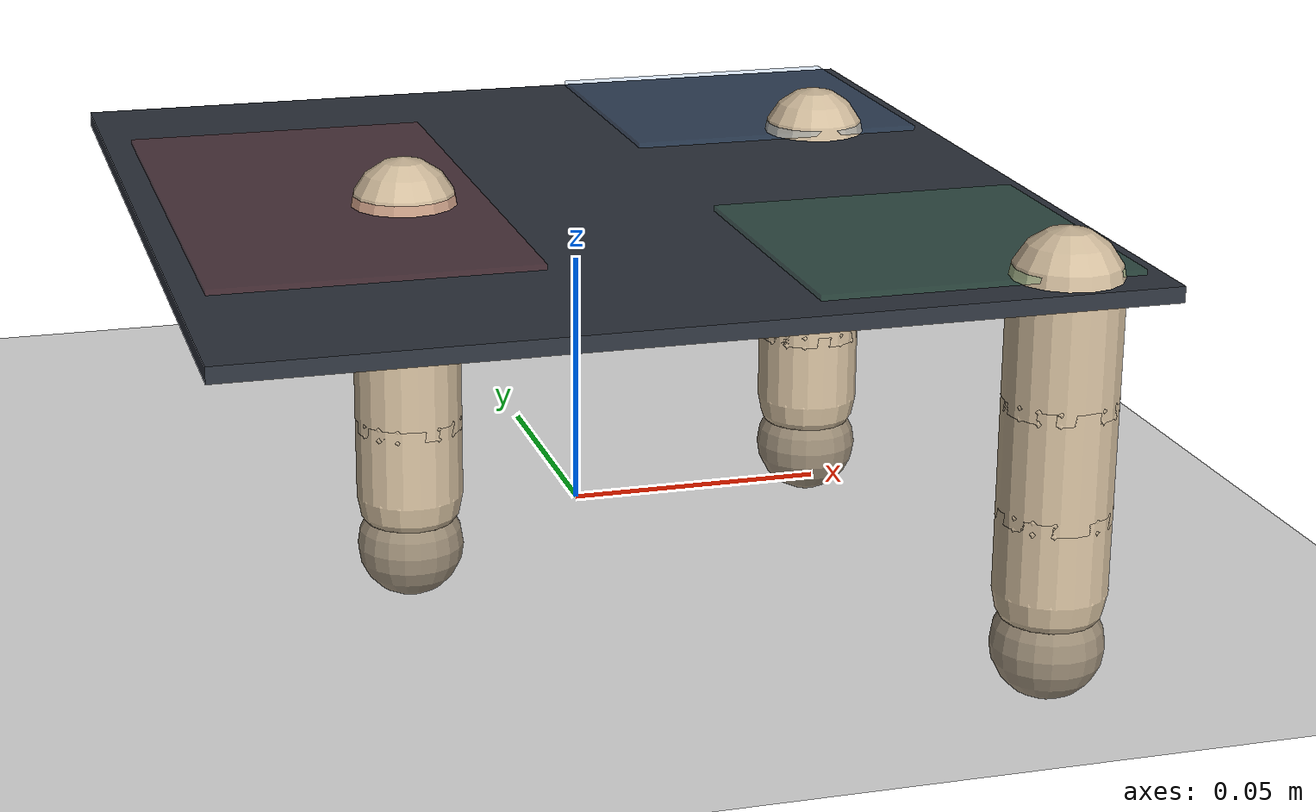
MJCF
<mujoco model="hand_tp0d0155n0d0013p0d0000_ip0d0111n0d0205p0d0000_mp0d0177n0d0239p0d0000">
  <compiler angle="radian" autolimits="true" />
  <option timestep="0.002" gravity="0 0 -9.81" integrator="implicitfast" />
  <visual>
    <headlight ambient=".4 .4 .4" diffuse=".8 .8 .8" specular="0.1 0.1 0.1" />
    <map znear=".01" />
    <quality shadowsize="2048" />
    <global elevation="-15" />
  </visual>
  <default>
    <geom friction="1.8 0.15 0.01" solref="0.006 1" solimp="0.97 0.995 0.0005" />
    <motor ctrlrange="-1 1" ctrllimited="true" />
    <default class="pose">
      <joint damping="2.0" armature="0.01" />
      <position kp="4000" kv="100" forcerange="-1000 1000" />
    </default>
    <default class="ctrl">
      <joint type="hinge" damping="0.5" armature="0.001" />
      <position kp="30" kv="0.5" gear="1" forcerange="-10 10" ctrlrange="-1 1" />
    </default>
  </default>
  <asset>
    <texture type="skybox" builtin="gradient" rgb1="0.3 0.5 0.7" rgb2="0 0 0" width="512" height="3072" />
    <texture type="2d" name="groundplane" builtin="checker" mark="edge" rgb1="0.2 0.3 0.4" rgb2="0.1 0.2 0.3" markrgb="0.8 0.8 0.8" width="300" height="300" />
    <material name="groundplane" texture="groundplane" texuniform="true" texrepeat="5 5" reflectance="0.2" />
    <texture name="grid" type="2d" builtin="checker" rgb1="0.15 0.15 0.15" rgb2="0.25 0.25 0.25" width="256" height="256" />
    <material name="table_mat" texture="grid" texrepeat="3 3" reflectance="0.2" />
    <material name="palm_mat" rgba="0.18 0.2 0.24 1" />
    <material name="finger_mat" rgba="0.8 0.72 0.6 1" />
    <material name="object_mat" rgba="0.6 0.6 0.6 1" />
  </asset>
  <worldbody>
    <light pos="0 0 1.5" dir="0 0 -1" directional="true" diffuse=".6 .6 .6" specular=".2 .2 .2" />
    <geom name="floor" type="plane" size="1.5 1.5 0.1" material="table_mat" contype="0" conaffinity="0" />
    <body gravcomp="1" name="palm_pose" pos="0 0 0.062500">
      <geom type="box" size="0.0850 0.0900 0.0015" material="palm_mat" />
      <site name="workspace_thumb" type="box" pos="-0.050 0 0.003" size="0.030 0.055 0.0005" rgba="0.85 0.30 0.30 0.14" />
      <site name="workspace_index" type="box" pos="0.050 0.055 0.003" size="0.030 0.030 0.0005" rgba="0.30 0.55 0.85 0.14" />
      <site name="workspace_middle" type="box" pos="0.050 -0.055 0.003" size="0.030 0.030 0.0005" rgba="0.30 0.75 0.45 0.14" />
      <body name="thumb_mount" pos="-0.034532 -0.001307 0">
        <inertial pos="0 0 0" mass="0.001" diaginertia="1e-6 1e-6 1e-6" />
        <body name="thumb_yaw_frame">
          <joint class="ctrl" name="thumb_yaw" axis="1 0 0" range="-1.483530 1.483530" />
          <geom type="capsule" fromto="0 0 0 0 0 -0.022900" size="0.010550" material="finger_mat" />
          <body name="thumb_mcp_frame" pos="0 0 -0.020750">
            <joint class="ctrl" name="thumb_mcp" axis="0 -1 0" range="-0.261799 1.605703" />
            <geom type="capsule" fromto="0 0 0 0 0 -0.022900" size="0.010550" material="finger_mat" />
            <body name="thumb_len_frame" pos="0 0 0">
              <inertial pos="0 0 0" mass="0.001" diaginertia="1e-6 1e-6 1e-6" />
              <body name="thumb_pip_frame" pos="0 0 -0.020750">
                <joint class="ctrl" name="thumb_pip" axis="0 -1 0" range="-0.314159 1.605703" />
                <geom type="capsule" fromto="0 0 0 0 0 -0.016060" size="0.010550" material="finger_mat" friction="2.4 0.2 0.02" />
                <body name="thumb_tip" pos="0 0 -0.026610">
                  <geom type="sphere" size="0.010550" material="finger_mat" friction="2.4 0.2 0.02" />
                </body>
              </body>
            </body>
          </body>
        </body>
      </body>
      <body name="index_mount" pos="0.061053 0.034524 0">
        <inertial pos="0 0 0" mass="0.001" diaginertia="1e-6 1e-6 1e-6" />
        <body name="index_yaw_frame">
          <joint class="ctrl" name="index_yaw" axis="1 0 0" range="-1.483530 1.483530" />
          <geom type="capsule" fromto="0 0 0 0 0 -0.022900" size="0.010550" material="finger_mat" />
          <body name="index_mcp_frame" pos="0 0 -0.020750">
            <joint class="ctrl" name="index_mcp" axis="0 1 0" range="-0.261799 1.605703" />
            <geom type="capsule" fromto="0 0 0 0 0 -0.022900" size="0.010550" material="finger_mat" />
            <body name="index_len_frame" pos="0 0 0">
              <inertial pos="0 0 0" mass="0.001" diaginertia="1e-6 1e-6 1e-6" />
              <body name="index_pip_frame" pos="0 0 -0.020750">
                <joint class="ctrl" name="index_pip" axis="0 1 0" range="-0.314159 1.605703" />
                <geom type="capsule" fromto="0 0 0 0 0 -0.016060" size="0.010550" material="finger_mat" friction="2.4 0.2 0.02" />
                <body name="index_tip" pos="0 0 -0.026610">
                  <geom type="sphere" size="0.010550" material="finger_mat" friction="2.4 0.2 0.02" />
                </body>
              </body>
            </body>
          </body>
        </body>
      </body>
      <body name="middle_mount" pos="0.067733 -0.078935 0">
        <inertial pos="0 0 0" mass="0.001" diaginertia="1e-6 1e-6 1e-6" />
        <body name="middle_yaw_frame">
          <joint class="ctrl" name="middle_yaw" axis="1 0 0" range="-1.483530 1.483530" />
          <geom type="capsule" fromto="0 0 0 0 0 -0.022900" size="0.010550" material="finger_mat" />
          <body name="middle_mcp_frame" pos="0 0 -0.020750">
            <joint class="ctrl" name="middle_mcp" axis="0 1 0" range="-0.261799 1.605703" />
            <geom type="capsule" fromto="0 0 0 0 0 -0.022900" size="0.010550" material="finger_mat" />
            <body name="middle_len_frame" pos="0 0 0">
              <inertial pos="0 0 0" mass="0.001" diaginertia="1e-6 1e-6 1e-6" />
              <body name="middle_pip_frame" pos="0 0 -0.020750">
                <joint class="ctrl" name="middle_pip" axis="0 1 0" range="-0.314159 1.605703" />
                <geom type="capsule" fromto="0 0 0 0 0 -0.016060" size="0.010550" material="finger_mat" friction="2.4 0.2 0.02" />
                <body name="middle_tip" pos="0 0 -0.026610">
                  <geom type="sphere" size="0.010550" material="finger_mat" friction="2.4 0.2 0.02" />
                </body>
              </body>
            </body>
          </body>
        </body>
      </body>
    </body>
  </worldbody>
  <contact>
    <exclude body1="palm_pose" body2="thumb_yaw_frame" />
    <exclude body1="palm_pose" body2="thumb_mcp_frame" />
    <exclude body1="palm_pose" body2="thumb_len_frame" />
    <exclude body1="palm_pose" body2="thumb_pip_frame" />
    <exclude body1="palm_pose" body2="thumb_tip" />
    <exclude body1="thumb_yaw_frame" body2="thumb_pip_frame" />
    <exclude body1="thumb_mcp_frame" body2="thumb_pip_frame" />
    <exclude body1="palm_pose" body2="index_yaw_frame" />
    <exclude body1="palm_pose" body2="index_mcp_frame" />
    <exclude body1="palm_pose" body2="index_len_frame" />
    <exclude body1="palm_pose" body2="index_pip_frame" />
    <exclude body1="palm_pose" body2="index_tip" />
    <exclude body1="index_yaw_frame" body2="index_pip_frame" />
    <exclude body1="index_mcp_frame" body2="index_pip_frame" />
    <exclude body1="palm_pose" body2="middle_yaw_frame" />
    <exclude body1="palm_pose" body2="middle_mcp_frame" />
    <exclude body1="palm_pose" body2="middle_len_frame" />
    <exclude body1="palm_pose" body2="middle_pip_frame" />
    <exclude body1="palm_pose" body2="middle_tip" />
    <exclude body1="middle_yaw_frame" body2="middle_pip_frame" />
    <exclude body1="middle_mcp_frame" body2="middle_pip_frame" />
  </contact>
  <actuator>
    <position class="ctrl" name="a_thumb_yaw" joint="thumb_yaw" ctrlrange="-1.483530 1.483530" />
    <position class="ctrl" name="a_thumb_mcp" joint="thumb_mcp" ctrlrange="-0.261799 1.605703" />
    <position class="ctrl" name="a_thumb_pip" joint="thumb_pip" ctrlrange="-0.314159 1.605703" />
    <position class="ctrl" name="a_index_yaw" joint="index_yaw" ctrlrange="-1.483530 1.483530" />
    <position class="ctrl" name="a_index_mcp" joint="index_mcp" ctrlrange="-0.261799 1.605703" />
    <position class="ctrl" name="a_index_pip" joint="index_pip" ctrlrange="-0.314159 1.605703" />
    <position class="ctrl" name="a_middle_yaw" joint="middle_yaw" ctrlrange="-1.483530 1.483530" />
    <position class="ctrl" name="a_middle_mcp" joint="middle_mcp" ctrlrange="-0.261799 1.605703" />
    <position class="ctrl" name="a_middle_pip" joint="middle_pip" ctrlrange="-0.314159 1.605703" />
  </actuator>
  <keyframe>
    <key name="open" qpos="&#10;        0 0.55 0.55 0 0.55 0.55 0 0.55 0.55&#10;      " ctrl="&#10;        0 0.55 0.55 0 0.55 0.55 0 0.55 0.55&#10;      " />
  </keyframe>
</mujoco>
